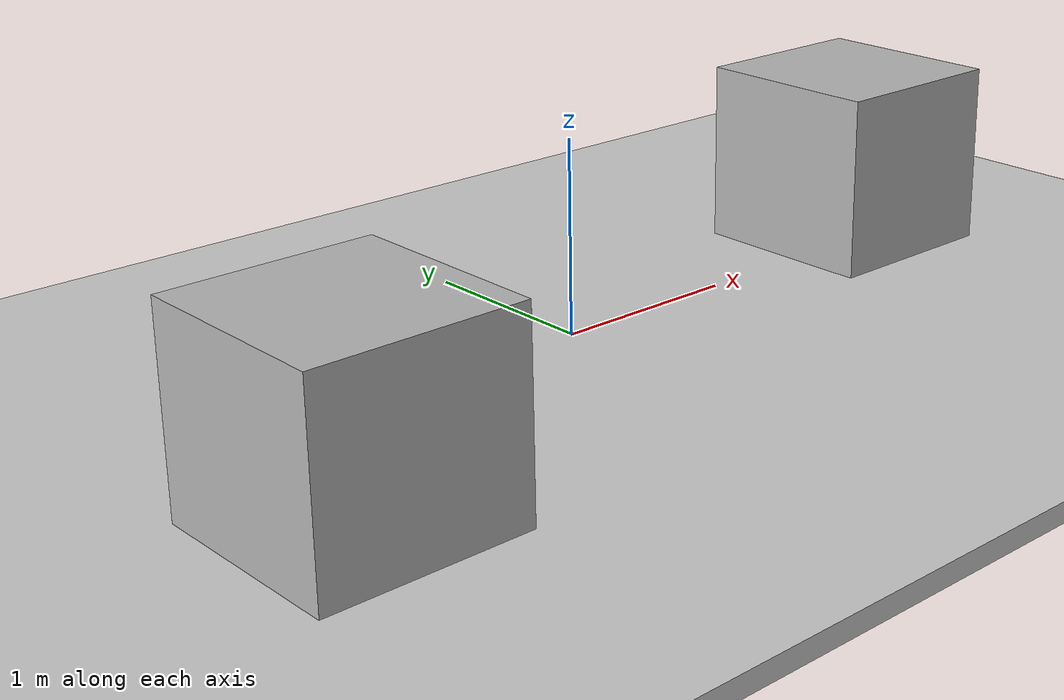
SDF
<?xml version="1.0" ?>
<sdf version="1.9">
  <world name='diffbot_world'>
    <physics name='1ms' type='ignored'>
      <max_step_size>0.001</max_step_size>
      <real_time_factor>1</real_time_factor>
      <real_time_update_rate>1000</real_time_update_rate>
    </physics>
    <plugin name='ignition::gazebo::systems::Physics' filename='libignition-gazebo-physics-system.so'/>
    <plugin name='ignition::gazebo::systems::Sensors' filename='libignition-gazebo-sensors-system.so'>
      <render_engine>ogre2</render_engine>
    </plugin>
    <plugin name='ignition::gazebo::systems::SceneBroadcaster' filename='libignition-gazebo-scene-broadcaster-system.so'/>
    <gui fullscreen='false'>
      <plugin name='3D View' filename='MinimalScene'>
        <ignition-gui>
          <title>3D View</title>
          <property type='bool' key='showTitleBar'>false</property>
          <property type='string' key='state'>docked</property>
        </ignition-gui>
        <engine>ogre2</engine>
        <scene>scene</scene>
        <ambient_light>0.4 0.4 0.4</ambient_light>
        <background_color>0.8 0.8 0.8</background_color>
        <camera_pose>-6 0 6 0 0.5 0</camera_pose>
      </plugin>
      <plugin name='Entity context menu' filename='EntityContextMenuPlugin'>
        <ignition-gui>
          <property key='state' type='string'>floating</property>
          <property key='width' type='double'>5</property>
          <property key='height' type='double'>5</property>
          <property key='showTitleBar' type='bool'>false</property>
        </ignition-gui>
      </plugin>
      <plugin name='Scene Manager' filename='GzSceneManager'>
        <ignition-gui>
          <property key='resizable' type='bool'>false</property>
          <property key='width' type='double'>5</property>
          <property key='height' type='double'>5</property>
          <property key='state' type='string'>floating</property>
          <property key='showTitleBar' type='bool'>false</property>
        </ignition-gui>
      </plugin>
      <plugin name='Interactive view control' filename='InteractiveViewControl'>
        <ignition-gui>
          <property key='resizable' type='bool'>false</property>
          <property key='width' type='double'>5</property>
          <property key='height' type='double'>5</property>
          <property key='state' type='string'>floating</property>
          <property key='showTitleBar' type='bool'>false</property>
        </ignition-gui>
      </plugin>
      <plugin name='Camera Tracking' filename='CameraTracking'>
        <ignition-gui>
          <property key='resizable' type='bool'>false</property>
          <property key='width' type='double'>5</property>
          <property key='height' type='double'>5</property>
          <property key='state' type='string'>floating</property>
          <property key='showTitleBar' type='bool'>false</property>
        </ignition-gui>
      </plugin>
      <plugin name='World control' filename='WorldControl'>
        <ignition-gui>
          <title>World control</title>
          <property type='bool' key='showTitleBar'>false</property>
          <property type='bool' key='resizable'>false</property>
          <property type='double' key='height'>72</property>
          <property type='double' key='width'>121</property>
          <property type='double' key='z'>1</property>
          <property type='string' key='state'>floating</property>
          <anchors target='3D View'>
            <line own='left' target='left'/>
            <line own='bottom' target='bottom'/>
          </anchors>
        </ignition-gui>
        <play_pause>true</play_pause>
        <step>true</step>
        <start_paused>true</start_paused>
        <use_event>true</use_event>
      </plugin>
      <plugin name='World stats' filename='WorldStats'>
        <ignition-gui>
          <title>World stats</title>
          <property type='bool' key='showTitleBar'>false</property>
          <property type='bool' key='resizable'>false</property>
          <property type='double' key='height'>110</property>
          <property type='double' key='width'>290</property>
          <property type='double' key='z'>1</property>
          <property type='string' key='state'>floating</property>
          <anchors target='3D View'>
            <line own='right' target='right'/>
            <line own='bottom' target='bottom'/>
          </anchors>
        </ignition-gui>
        <sim_time>true</sim_time>
        <real_time>true</real_time>
        <real_time_factor>true</real_time_factor>
        <iterations>true</iterations>
      </plugin>
      <plugin name='Visualize Lidar' filename='VisualizeLidar'/>
      <plugin name='Component inspector' filename='ComponentInspector'>
        <ignition-gui>
          <property type='string' key='state'>docked</property>
        </ignition-gui>
      </plugin>
      <plugin name='Entity tree' filename='EntityTree'>
        <ignition-gui>
          <property type='string' key='state'>docked</property>
        </ignition-gui>
      </plugin>
    </gui>
    <gravity>0 0 -9.8</gravity>
    <magnetic_field>6e-06 2.3e-05 -4.2e-05</magnetic_field>
    <atmosphere type='adiabatic'/>
    <scene>
      <ambient>0.4 0.4 0.4 1</ambient>
      <background>0.7 0.7 0.7 1</background>
      <shadows>true</shadows>
    </scene>
    <model name='ground_plane'>
      <static>true</static>
      <link name='link'>
        <collision name='collision'>
          <geometry>
            <box>
              <size>20 20 0.1</size>
            </box>
          </geometry>
          <surface>
            <friction>
              <ode/>
            </friction>
            <bounce/>
            <contact/>
          </surface>
        </collision>
        <visual name='visual'>
          <geometry>
            <box>
              <size>20 20 0.1</size>
            </box>
          </geometry>
          <material>
            <ambient>0.8 0.8 0.8 1</ambient>
            <diffuse>0.8 0.8 0.8 1</diffuse>
            <specular>0.8 0.8 0.8 1</specular>
          </material>
        </visual>
        <pose>0 0 0 0 -0 0</pose>
        <inertial>
          <pose>0 0 0 0 -0 0</pose>
          <mass>1</mass>
          <inertia>
            <ixx>1</ixx>
            <ixy>0</ixy>
            <ixz>0</ixz>
            <iyy>1</iyy>
            <iyz>0</iyz>
            <izz>1</izz>
          </inertia>
        </inertial>
        <enable_wind>false</enable_wind>
      </link>
      <pose>0 0 0 0 -0 0</pose>
      <self_collide>false</self_collide>
    </model>
    <!-- Obstáculos -->
    <model name="box_1">
      <pose>2 0 0.5 0 0 0</pose>
      <link name="link">
        <collision name="collision">
          <geometry><box><size>1 1 1</size></box></geometry>
        </collision>
        <visual name="visual">
          <geometry><box><size>1 1 1</size></box></geometry>
        </visual>
      </link>
    </model>

    <model name="box_2">
      <pose>-2 -1 0.5 0 0 0</pose>
      <link name="link">
        <collision name="collision">
          <geometry><box><size>1 1 1</size></box></geometry>
        </collision>
        <visual name="visual">
          <geometry><box><size>1 1 1</size></box></geometry>
        </visual>
      </link>
    </model>

    <light name='sun' type='directional'>
      <pose>0 0 10 0 -0 0</pose>
      <cast_shadows>true</cast_shadows>
      <intensity>1</intensity>
      <direction>-0.5 0.1 -0.9</direction>
      <diffuse>0.8 0.8 0.8 1</diffuse>
      <specular>0.2 0.2 0.2 1</specular>
      <attenuation>
        <range>1000</range>
        <linear>0.01</linear>
        <constant>0.90000000000000002</constant>
        <quadratic>0.001</quadratic>
      </attenuation>
      <spot>
        <inner_angle>0</inner_angle>
        <outer_angle>0</outer_angle>
        <falloff>0</falloff>
      </spot>
    </light>
  </world>
</sdf>
